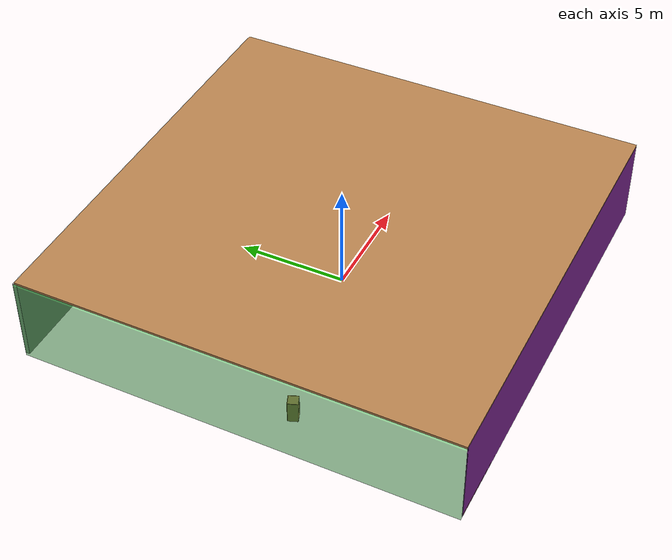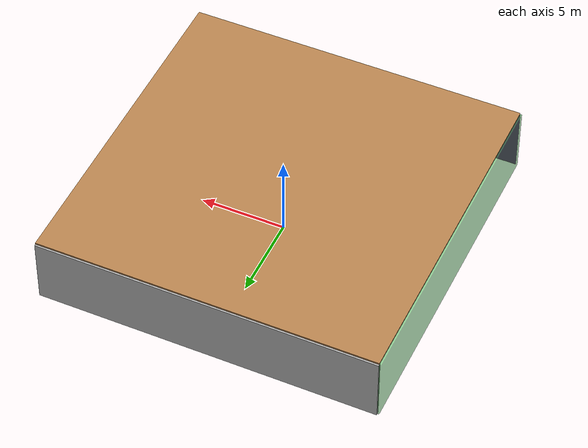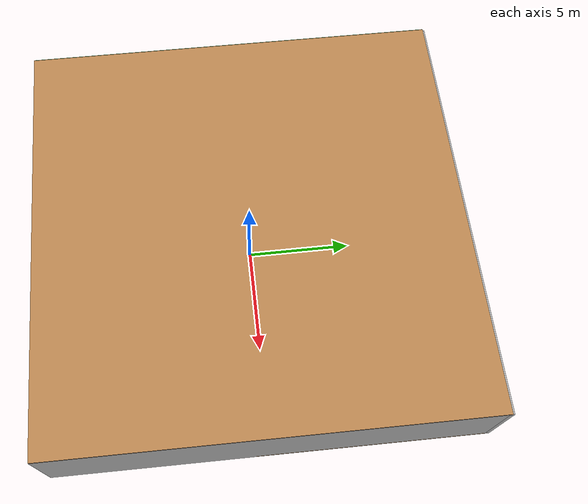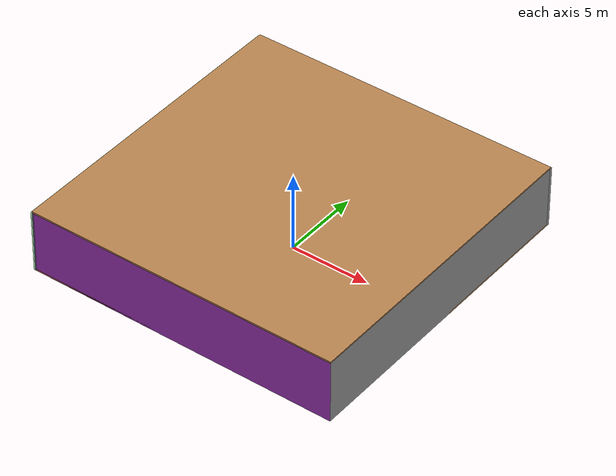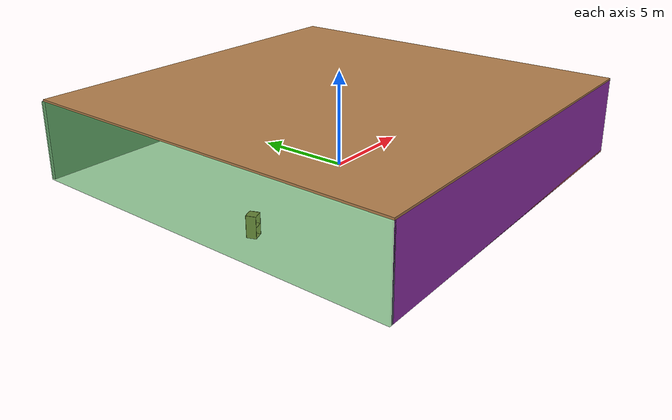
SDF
<sdf version="1.4">
 <world name="default">
  <physics type="ode">
   <max_step_size>0.001</max_step_size>
   <real_time_factor>1</real_time_factor>
   <real_time_update_rate>1000</real_time_update_rate>
   <gravity>0 0 -9.8</gravity>
  </physics>
  <scene><ambient>0.4 0.4 0.4 1</ambient><background>0.7 0.7 0.7 1</background><shadows>1</shadows></scene>
  <model name="Surrounding">
   <static>1</static>
   <link name="Ceiling">
    <collision name="Ceiling_Collision"><geometry><box><size>20 20 0.1</size></box></geometry></collision>
    <visual name="Ceiling_Visual">
     <geometry><box><size>20 20 0.1</size></box></geometry>
     <material>
      <script><uri>file://media/materials/scripts/gazebo.material</uri><name>Gazebo/Wood</name></script>
     </material>
    </visual>
    <pose>0 0 4.05 0 0 0</pose>
   </link>
   <link name="Wall_South">
    <collision name="Wall_South_Collision">
     <geometry><box><size>20 0 4</size></box></geometry>
     <pose>0 0 2 0 -0 0</pose>
    </collision>
    <visual name="Wall_South_Visual">
     <pose>0 0 2 0 -0 0</pose>
     <geometry><box><size>20 0 4</size></box></geometry>
     <material>
      <script><uri>file://media/materials/scripts/gazebo.material</uri><name>Gazebo/PurpleGlow</name></script>
     </material>
    </visual>
    <velocity_decay><linear>0</linear><angular>0</angular></velocity_decay>
    <pose>0 -10 0 0 -0 0</pose>
   </link>
   <link name="Wall_East">
    <collision name="Wall_21_Collision">
     <geometry><box><size>20 0 4</size></box></geometry>
     <pose>0 0 2 0 -0 0</pose>
    </collision>
    <visual name="Wall_21_Visual">
     <pose>0 0 2 0 -0 0</pose>
     <geometry><box><size>20 0 4</size></box></geometry>
     <material>
      <script><uri>file://media/materials/scripts/gazebo.material</uri><name>Gazebo/CloudySky</name></script>
     </material>
    </visual>
    <velocity_decay><linear>0</linear><angular>0</angular></velocity_decay>
    <pose>10 0 0 0 -0 1.5708</pose>
   </link>
   <link name="Wall_North">
    <collision name="Wall_22_Collision">
     <geometry><box><size>20 0.2 4</size></box></geometry>
     <pose>0 0 2 0 -0 0</pose>
    </collision>
    <visual name="Wall_22_Visual">
     <pose>0 0 2 0 -0 0</pose>
     <geometry><box><size>20 0.2 4</size></box></geometry>
     <material>
      <script><uri>file://media/materials/scripts/gazebo.material</uri><name>Gazebo/LightOn</name></script>
     </material>
    </visual>
    <velocity_decay><linear>0</linear><angular>0</angular></velocity_decay>
    <pose>0 10 0 0 -0 0</pose>
   </link>
   <link name="Wall_West">
    <collision name="Wall_23_Collision">
     <geometry><box><size>20 0.2 4</size></box></geometry>
     <pose>0 0 2 0 -0 0</pose>
    </collision>
    <visual name="Wall_23_Visual">
     <pose>0 0 2 0 -0 0</pose>
     <geometry><box><size>20 0.2 4</size></box></geometry>
     <material>
      <script><uri>file://media/materials/scripts/gazebo.material</uri><name>Gazebo/GreenTransparent</name></script>
     </material>
    </visual>
    <velocity_decay><linear>0</linear><angular>0</angular></velocity_decay>
    <pose>-10 0 0 0 0 -1.5708</pose>
   </link>
   <link name="Ground_link">
    <collision name="collision">
     <pose>0 0 .05 0 -0 0</pose>
     <geometry><box><size>20 20 0.1</size></box></geometry>
    </collision>
    <visual name="visual">
     <pose>0 0 .05 0 -0 0</pose>
     <geometry><box><size>20 20 0.1</size></box></geometry>
     <material>
      <script>
       <uri>file://media/materials/scripts/gazebo.material</uri>
       <name>Gazebo/OrangeTransparent</name>
      </script>
     </material>
    </visual>
   </link>
   <static>1</static>
  </model>
  <spherical_coordinates>
   <surface_model>EARTH_WGS84</surface_model>
   <latitude_deg>0</latitude_deg>
   <longitude_deg>0</longitude_deg>
   <elevation>0</elevation>
   <heading_deg>0</heading_deg>
  </spherical_coordinates>
  <light name="lightball_0" type="diffuse">
   <diffuse>0.8 0.8 0.8 1</diffuse>
   <specular>0.2 0.2 0.2 1</specular>
   <attenuation>
    <range>100</range>
    <constant>0.7</constant>
    <linear>0.01</linear>
    <quadratic>0.001</quadratic>
   </attenuation>
   <direction>-0.5 0.1 -0.9</direction>
   <pose>6.34130538515 0.776804632609 2.45032519963 0 0 0</pose>
  </light>
  <light name="lightball_1" type="diffuse">
   <diffuse>0.8 0.8 0.8 1</diffuse>
   <specular>0.2 0.2 0.2 1</specular>
   <attenuation>
    <range>100</range>
    <constant>0.7</constant>
    <linear>0.01</linear>
    <quadratic>0.001</quadratic>
   </attenuation>
   <direction>-0.5 0.1 -0.9</direction>
   <pose>7.21773888358 -9.12334144457 3.46870598514 0 0 0</pose>
  </light>
  <light name="lightball_2" type="diffuse">
   <diffuse>0.8 0.8 0.8 1</diffuse>
   <specular>0.2 0.2 0.2 1</specular>
   <attenuation>
    <range>100</range>
    <constant>0.7</constant>
    <linear>0.01</linear>
    <quadratic>0.001</quadratic>
   </attenuation>
   <direction>-0.5 0.1 -0.9</direction>
   <pose>6.2164501158 3.80543400207 0.666105065964 0 0 0</pose>
  </light>
  <light name="lightball_3" type="diffuse">
   <diffuse>0.8 0.8 0.8 1</diffuse>
   <specular>0.2 0.2 0.2 1</specular>
   <attenuation>
    <range>100</range>
    <constant>0.7</constant>
    <linear>0.01</linear>
    <quadratic>0.001</quadratic>
   </attenuation>
   <direction>-0.5 0.1 -0.9</direction>
   <pose>-8.49499534425 -0.530022603207 2.74739084375 0 0 0</pose>
  </light>
  <light name="lightball_4" type="diffuse">
   <diffuse>0.8 0.8 0.8 1</diffuse>
   <specular>0.2 0.2 0.2 1</specular>
   <attenuation>
    <range>100</range>
    <constant>0.7</constant>
    <linear>0.01</linear>
    <quadratic>0.001</quadratic>
   </attenuation>
   <direction>-0.5 0.1 -0.9</direction>
   <pose>-5.09242779391 1.1496548179 1.30961729809 0 0 0</pose>
  </light>
  <light name="lightball_5" type="diffuse">
   <diffuse>0.8 0.8 0.8 1</diffuse>
   <specular>0.2 0.2 0.2 1</specular>
   <attenuation>
    <range>100</range>
    <constant>0.7</constant>
    <linear>0.01</linear>
    <quadratic>0.001</quadratic>
   </attenuation>
   <direction>-0.5 0.1 -0.9</direction>
   <pose>9.51690927699 -6.40238698984 1.13503076262 0 0 0</pose>
  </light>
  <include><uri>model://cabinet</uri><pose>-8.24315394276 -1.85059306565 0 0 0 1.93641624298</pose></include>
  <include>
   <uri>model://robocup_3Dsim_goal</uri>
   <pose>0.480466559565 3.49460120409 0 0 0 0.995074371528</pose>
  </include>
 </world>
</sdf>

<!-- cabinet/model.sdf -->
<sdf version="1.5">
  <model name="cabinet">
    <static>true</static>
    <link name="cabinet_bottom_plate">
      <inertial>
        <pose>0 0 -1 0 0 0</pose>
        <inertia>
          <ixx>2.050000</ixx>
          <ixy>0</ixy>
          <ixz>0</ixz>
          <iyy>2.050000</iyy>
          <iyz>0</iyz>
          <izz>2.050000</izz>
        </inertia>
        <mass>25.000000</mass>
      </inertial>
      <collision name="cabinet_bottom_plate_geom">
        <pose>0 0 0.010000 0 0 0</pose>
        <geometry>
          <box>
            <size>0.450000 0.450000 0.020000</size>
          </box>
        </geometry>
      </collision>
      <visual name="cabinet_bottom_plate_geom_visual">
        <pose>0 0 0.010000 0 0 0</pose>
        <geometry>
          <box>
            <size>0.450000 0.450000 0.020000</size>
          </box>
        </geometry>
        <material>
          <script>
            <uri>model://media/materials/scripts/gazebo.material</uri>
            <name>Gazebo/Wood</name>
          </script>
        </material>
      </visual>
      <collision name="cabinet_bottom_plate_geom_cabinet_back_plate">
        <pose>0.235000 0 0.510000 0 0 0</pose>
        <geometry>
          <box>
            <size>0.020000 0.450000 1.020000</size>
          </box>
        </geometry>
      </collision>
      <visual name="cabinet_bottom_plate_geom_cabinet_back_plate_visual">
        <pose>0.235000 0 0.510000 0 0 0</pose>
        <geometry>
          <box>
            <size>0.020000 0.450000 1.020000</size>
          </box>
        </geometry>
        <material>
          <script>
            <uri>model://media/materials/scripts/gazebo.material</uri>
            <name>Gazebo/Wood</name>
          </script>
        </material>
      </visual>
      <collision name="cabinet_bottom_plate_geom_cabinet_left_plate">
        <pose>0 0.235000 0.510000 0 0 0</pose>
        <geometry>
          <box>
            <size>0.450000 0.020000 1.020000</size>
          </box>
        </geometry>
      </collision>
      <visual name="cabinet_bottom_plate_geom_cabinet_left_plate_visual">
        <pose>0 0.235000 0.510000 0 0 0</pose>
        <geometry>
          <box>
            <size>0.450000 0.020000 1.020000</size>
          </box>
        </geometry>
        <material>
          <script>
            <uri>model://media/materials/scripts/gazebo.material</uri>
            <name>Gazebo/Wood</name>
          </script>
        </material>
      </visual>
      <collision name="cabinet_bottom_plate_geom_cabinet_middle_plate">
        <pose>0 0 0.510000 0 0 0</pose>
        <geometry>
          <box>
            <size>0.450000 0.450000 0.020000</size>
          </box>
        </geometry>
      </collision>
      <visual name="cabinet_bottom_plate_geom_cabinet_middle_plate_visual">
        <pose>0 0 0.510000 0 0 0</pose>
        <geometry>
          <box>
            <size>0.450000 0.450000 0.020000</size>
          </box>
        </geometry>
        <material>
          <script>
            <uri>model://media/materials/scripts/gazebo.material</uri>
            <name>Gazebo/Wood</name>
          </script>
        </material>
      </visual>
      <collision name="cabinet_bottom_plate_geom_cabinet_right_plate">
        <pose>0 -0.235000 0.510000 0 0 0</pose>
        <geometry>
          <box>
            <size>0.450000 0.020000 1.020000</size>
          </box>
        </geometry>
      </collision>
      <visual name="cabinet_bottom_plate_geom_cabinet_right_plate_visual">
        <pose>0 -0.235000 0.510000 0 0 0</pose>
        <geometry>
          <box>
            <size>0.450000 0.020000 1.020000</size>
          </box>
        </geometry>
        <material>
          <script>
            <uri>model://media/materials/scripts/gazebo.material</uri>
            <name>Gazebo/Wood</name>
          </script>
        </material>
      </visual>
      <collision name="cabinet_bottom_plate_geom_cabinet_top_plate">
        <pose>0 0 1.010000 0 0 0</pose>
        <geometry>
          <box>
            <size>0.450000 0.450000 0.020000</size>
          </box>
        </geometry>
      </collision>
      <visual name="cabinet_bottom_plate_geom_cabinet_top_plate_visual">
        <pose>0 0 1.010000 0 0 0</pose>
        <geometry>
          <box>
            <size>0.450000 0.450000 0.020000</size>
          </box>
        </geometry>
        <material>
          <script>
            <uri>model://media/materials/scripts/gazebo.material</uri>
            <name>Gazebo/Wood</name>
          </script>
        </material>
      </visual>
    </link>
  </model>
</sdf>

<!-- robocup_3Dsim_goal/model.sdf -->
<sdf version="1.5">
  <model name="robocup_3d_goal">
    <static>true</static>
    <link name="left_post">
      <pose>0 1.05 0.45 0 0 0</pose>
      <collision name="collision">
        <geometry>
          <cylinder>
            <radius>0.05</radius>
            <length>0.9</length>
          </cylinder>
        </geometry>
      </collision>
      <visual name="visual">
        <geometry>
          <cylinder>
            <radius>0.05</radius>
            <length>0.9</length>
          </cylinder>
        </geometry>
        <material>
          <script>
            <uri>file://media/materials/scripts/gazebo.material</uri>
            <name>Gazebo/ZincYellow</name>
          </script>
        </material>
      </visual>
    </link>
    <link name="left_support_horiz_lower">
      <pose>0.30 1.05 0.01 0 0 0</pose>
      <collision name="collision">
        <geometry>
          <box>
            <size>0.50 0.02 0.02</size>
          </box>
        </geometry>
      </collision>
      <visual name="visual">
        <geometry>
          <box>
            <size>0.50 0.02 0.02</size>
          </box>
        </geometry>
        <material>
          <script>
            <uri>file://media/materials/scripts/gazebo.material</uri>
            <name>Gazebo/White</name>
          </script>
        </material>
      </visual>
    </link>
    <link name="left_support_horiz_upper">
      <pose>0.30 1.05 0.79 0 0 0</pose>
      <collision name="collision">
        <geometry>
          <box>
            <size>0.50 0.02 0.02</size>
          </box>
        </geometry>
      </collision>
      <visual name="visual">
        <geometry>
          <box>
            <size>0.50 0.02 0.02</size>
          </box>
        </geometry>
        <material>
          <script>
            <uri>file://media/materials/scripts/gazebo.material</uri>
            <name>Gazebo/White</name>
          </script>
        </material>
      </visual>
    </link>
    <link name="left_support_vertical">
      <pose>0.56 1.05 0.4 0 1.5708 0</pose>
      <collision name="collision">
        <geometry>
          <box>
            <size>0.80 0.02 0.02</size>
          </box>
        </geometry>
      </collision>
      <visual name="visual">
        <geometry>
          <box>
            <size>0.80 0.02 0.02</size>
          </box>
        </geometry>
        <material>
          <script>
            <uri>file://media/materials/scripts/gazebo.material</uri>
            <name>Gazebo/White</name>
          </script>
        </material>
      </visual>
    </link>
    <link name="right_support_horiz_lower">
      <pose>0.30 -1.05 0.01 0 0 0</pose>
      <collision name="collision">
        <geometry>
          <box>
            <size>0.50 0.02 0.02</size>
          </box>
        </geometry>
      </collision>
      <visual name="visual">
        <geometry>
          <box>
            <size>0.50 0.02 0.02</size>
          </box>
        </geometry>
        <material>
          <script>
            <uri>file://media/materials/scripts/gazebo.material</uri>
            <name>Gazebo/White</name>
          </script>
        </material>
      </visual>
    </link>
    <link name="right_support_horiz_upper">
      <pose>0.30 -1.05 0.79 0 0 0</pose>
      <collision name="collision">
        <geometry>
          <box>
            <size>0.50 0.02 0.02</size>
          </box>
        </geometry>
      </collision>
      <visual name="visual">
        <geometry>
          <box>
            <size>0.50 0.02 0.02</size>
          </box>
        </geometry>
        <material>
          <script>
            <uri>file://media/materials/scripts/gazebo.material</uri>
            <name>Gazebo/White</name>
          </script>
        </material>
      </visual>
    </link>
    <link name="right_support_vertical">
      <pose>0.56 -1.05 0.4 0 1.5708 0</pose>
      <collision name="collision">
        <geometry>
          <box>
            <size>0.80 0.02 0.02</size>
          </box>
        </geometry>
      </collision>
      <visual name="visual">
        <geometry>
          <box>
            <size>0.80 0.02 0.02</size>
          </box>
        </geometry>
        <material>
          <script>
            <uri>file://media/materials/scripts/gazebo.material</uri>
            <name>Gazebo/White</name>
          </script>
        </material>
      </visual>
    </link>
    <link name="center_support_horiz_lower">
      <pose>0.56 0 0.01 0 1.5708 0</pose>
      <collision name="collision">
        <geometry>
          <box>
            <size>0.02 2.08 0.02</size>
          </box>
        </geometry>
      </collision>
      <visual name="visual">
        <geometry>
          <box>
            <size>0.02 2.08 0.02</size>
          </box>
        </geometry>
        <material>
          <script>
            <uri>file://media/materials/scripts/gazebo.material</uri>
            <name>Gazebo/White</name>
          </script>
        </material>
      </visual>
    </link>
    <link name="center_support_horiz_upper">
      <pose>0.56 0 0.79 0 1.5708 0</pose>
      <collision name="collision">
        <geometry>
          <box>
            <size>0.02 2.08 0.02</size>
          </box>
        </geometry>
      </collision>
      <visual name="visual">
        <geometry>
          <box>
            <size>0.02 2.08 0.02</size>
          </box>
        </geometry>
        <material>
          <script>
            <uri>file://media/materials/scripts/gazebo.material</uri>
            <name>Gazebo/White</name>
          </script>
        </material>
      </visual>
    </link>
    <link name="right_post">
      <pose>0 -1.05 0.45 0 0 0</pose>
      <collision name="collision">
        <geometry>
          <cylinder>
            <radius>0.05</radius>
            <length>0.9</length>
          </cylinder>
        </geometry>
      </collision>
      <visual name="visual">
        <geometry>
          <cylinder>
            <radius>0.05</radius>
            <length>0.9</length>
          </cylinder>
        </geometry>
        <material>
          <script>
            <uri>file://media/materials/scripts/gazebo.material</uri>
            <name>Gazebo/ZincYellow</name>
          </script>
        </material>
      </visual>
    </link>
    <link name="crossbar">
      <pose>0 0 0.85 1.57 1.57 0</pose>
      <collision name="collision">
        <geometry>
          <cylinder>
            <radius>0.05</radius>
            <length>2.0</length>
          </cylinder>
        </geometry>
      </collision>
      <visual name="visual">
        <geometry>
          <cylinder>
            <radius>0.05</radius>
            <length>2.0</length>
          </cylinder>
        </geometry>
        <material>
          <script>
            <uri>file://media/materials/scripts/gazebo.material</uri>
            <name>Gazebo/ZincYellow</name>
          </script>
        </material>
      </visual>
    </link>
    <link name="center_net">
      <pose>0.56 0 0.40 0 0 0</pose>
      <collision name="collision">
        <geometry>
          <box>
            <size>0.01 2.1 0.80</size>
          </box>
        </geometry>
      </collision>
      <visual name="visual">
        <geometry>
          <box>
            <size>0.01 2.1 0.80</size>
          </box>
        </geometry>
        <material>
          <script>
            <uri>model://../model_source/models/robocup09_spl_field/materials/scripts/</uri>
            <uri>model://../model_source/models/robocup09_spl_field/materials/textures/</uri>
            <name>RoboCup/Net</name>
          </script>
        </material>
      </visual>
    </link>
    <link name="left_net">
      <pose>0.30 1.05 0.40 0 0 0</pose>
      <collision name="collision">
        <geometry>
          <box>
            <size>0.50 0.01 0.76</size>
          </box>
        </geometry>
      </collision>
      <visual name="visual">
        <geometry>
          <box>
            <size>0.50 0.01 0.76</size>
          </box>
        </geometry>
        <material>
          <script>
            <uri>model://../model_source/models/robocup09_spl_field/materials/scripts/</uri>
            <uri>model://../model_source/models/robocup09_spl_field/materials/textures/</uri>
            <name>RoboCup/Net</name>
          </script>
        </material>
      </visual>
    </link>
    <link name="right_net">
      <pose>0.30 -1.05 0.40 0 0 0</pose>
      <collision name="collision">
        <geometry>
          <box>
            <size>0.50 0.01 0.76</size>
          </box>
        </geometry>
      </collision>
      <visual name="visual">
        <geometry>
          <box>
            <size>0.50 0.01 0.76</size>
          </box>
        </geometry>
        <material>
          <script>
            <uri>model://../model_source/models/robocup09_spl_field/materials/scripts/</uri>
            <uri>model://../model_source/models/robocup09_spl_field/materials/textures/</uri>
            <name>RoboCup/Net</name>
          </script>
        </material>
      </visual>
    </link>
  </model>
</sdf>
